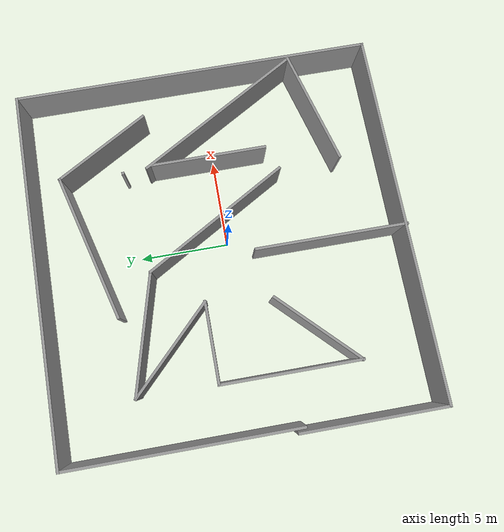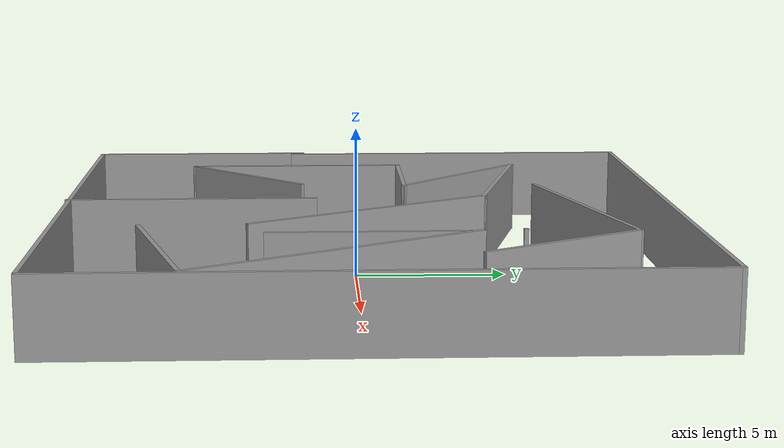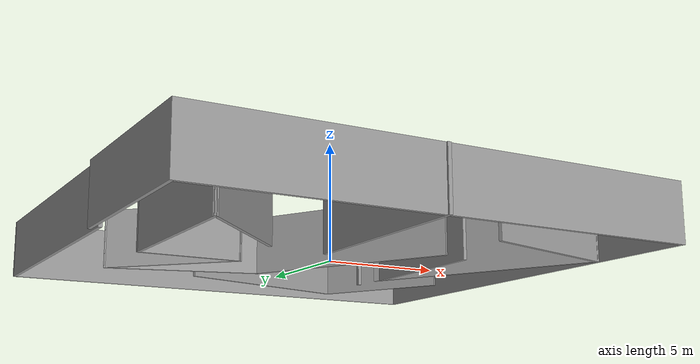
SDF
<?xml version='1.0'?>
<sdf version='1.7'>
  <model name='custom_maze'>
    <pose>-0.400527 0.370273 0 0 -0 0</pose>
    <link name='Wall_13'>
      <collision name='Wall_13_Collision'>
        <geometry>
          <box>
            <size>0.16 0.15 2.5</size>
          </box>
        </geometry>
        <pose>0 0 1.25 0 -0 0</pose>
      </collision>
      <visual name='Wall_13_Visual'>
        <pose>0 0 1.25 0 -0 0</pose>
        <geometry>
          <box>
            <size>0.16 0.15 2.5</size>
          </box>
        </geometry>
        <material>
          <script>
            <uri>file://media/materials/scripts/gazebo.material</uri>
            <name>Gazebo/Grey</name>
          </script>
          <ambient>1 1 1 1</ambient>
        </material>
        <meta>
          <layer>0</layer>
        </meta>
      </visual>
      <pose>4.87592 4.74466 0 0 -0 0</pose>
    </link>
    <link name='Wall_16'>
      <collision name='Wall_16_Collision'>
        <geometry>
          <box>
            <size>8.5 0.15 2.5</size>
          </box>
        </geometry>
        <pose>0 0 1.25 0 -0 0</pose>
      </collision>
      <visual name='Wall_16_Visual'>
        <pose>0 0 1.25 0 -0 0</pose>
        <geometry>
          <box>
            <size>8.5 0.15 2.5</size>
          </box>
        </geometry>
        <material>
          <script>
            <uri>file://media/materials/scripts/gazebo.material</uri>
            <name>Gazebo/Grey</name>
          </script>
          <ambient>1 1 1 1</ambient>
        </material>
        <meta>
          <layer>0</layer>
        </meta>
      </visual>
      <pose>1.08404 7.16042 0 0 -0 0.261799</pose>
    </link>
    <link name='Wall_17'>
      <collision name='Wall_17_Collision'>
        <geometry>
          <box>
            <size>6 0.15 2.5</size>
          </box>
        </geometry>
        <pose>0 0 1.25 0 -0 0</pose>
      </collision>
      <visual name='Wall_17_Visual'>
        <pose>0 0 1.25 0 -0 0</pose>
        <geometry>
          <box>
            <size>6 0.15 2.5</size>
          </box>
        </geometry>
        <material>
          <script>
            <uri>file://media/materials/scripts/gazebo.material</uri>
            <name>Gazebo/Grey</name>
          </script>
          <ambient>1 1 1 1</ambient>
        </material>
        <meta>
          <layer>0</layer>
        </meta>
      </visual>
      <pose>6.57928 5.70786 0 0 -0 -1.0472</pose>
    </link>
    <link name='Wall_19'>
      <collision name='Wall_19_Collision'>
        <geometry>
          <box>
            <size>10.5 0.15 2.5</size>
          </box>
        </geometry>
        <pose>0 0 1.25 0 -0 0</pose>
      </collision>
      <visual name='Wall_19_Visual'>
        <pose>0 0 1.25 0 -0 0</pose>
        <geometry>
          <box>
            <size>10.5 0.15 2.5</size>
          </box>
        </geometry>
        <material>
          <script>
            <uri>file://media/materials/scripts/gazebo.material</uri>
            <name>Gazebo/Grey</name>
          </script>
          <ambient>1 1 1 1</ambient>
        </material>
        <meta>
          <layer>0</layer>
        </meta>
      </visual>
      <pose>7.55134 -1.09448 0 0 -0 -1.0472</pose>
    </link>
    <link name='Wall_21'>
      <collision name='Wall_21_Collision'>
        <geometry>
          <box>
            <size>6.5 0.15 2.5</size>
          </box>
        </geometry>
        <pose>0 0 1.25 0 -0 0</pose>
      </collision>
      <visual name='Wall_21_Visual'>
        <pose>0 0 1.25 0 -0 0</pose>
        <geometry>
          <box>
            <size>6.5 0.15 2.5</size>
          </box>
        </geometry>
        <material>
          <script>
            <uri>file://media/materials/scripts/gazebo.material</uri>
            <name>Gazebo/Grey</name>
          </script>
          <ambient>1 1 1 1</ambient>
        </material>
        <meta>
          <layer>0</layer>
        </meta>
      </visual>
      <pose>5.06845 -0.101621 0 0 -0 -1.5708</pose>
    </link>
    <link name='Wall_23'>
      <collision name='Wall_23_Collision'>
        <geometry>
          <box>
            <size>9.25 0.15 2.5</size>
          </box>
        </geometry>
        <pose>0 0 1.25 0 -0 0</pose>
      </collision>
      <visual name='Wall_23_Visual'>
        <pose>0 0 1.25 0 -0 0</pose>
        <geometry>
          <box>
            <size>9.25 0.15 2.5</size>
          </box>
        </geometry>
        <material>
          <script>
            <uri>file://media/materials/scripts/gazebo.material</uri>
            <name>Gazebo/Grey</name>
          </script>
          <ambient>1 1 1 1</ambient>
        </material>
        <meta>
          <layer>0</layer>
        </meta>
      </visual>
      <pose>1.43354 0.109629 0 0 -0 2.0944</pose>
    </link>
    <link name='Wall_24'>
      <collision name='Wall_24_Collision'>
        <geometry>
          <box>
            <size>6.75 0.15 2.5</size>
          </box>
        </geometry>
        <pose>0 0 1.25 0 -0 0</pose>
      </collision>
      <visual name='Wall_24_Visual'>
        <pose>0 0 1.25 0 -0 0</pose>
        <geometry>
          <box>
            <size>6.75 0.15 2.5</size>
          </box>
        </geometry>
        <material>
          <script>
            <uri>file://media/materials/scripts/gazebo.material</uri>
            <name>Gazebo/Grey</name>
          </script>
          <ambient>1 1 1 1</ambient>
        </material>
        <meta>
          <layer>0</layer>
        </meta>
      </visual>
      <pose>-4.02901 4.90415 0 0 -0 2.87979</pose>
    </link>
    <link name='Wall_25'>
      <collision name='Wall_25_Collision'>
        <geometry>
          <box>
            <size>6.25 0.15 2.5</size>
          </box>
        </geometry>
        <pose>0 0 1.25 0 -0 0</pose>
      </collision>
      <visual name='Wall_25_Visual'>
        <pose>0 0 1.25 0 -0 0</pose>
        <geometry>
          <box>
            <size>6.25 0.15 2.5</size>
          </box>
        </geometry>
        <material>
          <script>
            <uri>file://media/materials/scripts/gazebo.material</uri>
            <name>Gazebo/Grey</name>
          </script>
          <ambient>1 1 1 1</ambient>
        </material>
        <meta>
          <layer>0</layer>
        </meta>
      </visual>
      <pose>-5.05989 3.60157 0 0 -0 -0.785398</pose>
    </link>
    <link name='Wall_26'>
      <collision name='Wall_26_Collision'>
        <geometry>
          <box>
            <size>4.5 0.15 2.5</size>
          </box>
        </geometry>
        <pose>0 0 1.25 0 -0 0</pose>
      </collision>
      <visual name='Wall_26_Visual'>
        <pose>0 0 1.25 0 -0 0</pose>
        <geometry>
          <box>
            <size>4.5 0.15 2.5</size>
          </box>
        </geometry>
        <material>
          <script>
            <uri>file://media/materials/scripts/gazebo.material</uri>
            <name>Gazebo/Grey</name>
          </script>
          <ambient>1 1 1 1</ambient>
        </material>
        <meta>
          <layer>0</layer>
        </meta>
      </visual>
      <pose>-5.07822 1.4449 0 0 -0 3.14159</pose>
    </link>
    <link name='Wall_27'>
      <collision name='Wall_27_Collision'>
        <geometry>
          <box>
            <size>7.75 0.15 2.5</size>
          </box>
        </geometry>
        <pose>0 0 1.25 0 -0 0</pose>
      </collision>
      <visual name='Wall_27_Visual'>
        <pose>0 0 1.25 0 -0 0</pose>
        <geometry>
          <box>
            <size>7.75 0.15 2.5</size>
          </box>
        </geometry>
        <material>
          <script>
            <uri>file://media/materials/scripts/gazebo.material</uri>
            <name>Gazebo/Grey</name>
          </script>
          <ambient>1 1 1 1</ambient>
        </material>
        <meta>
          <layer>0</layer>
        </meta>
      </visual>
      <pose>-7.25322 -2.3551 0 0 -0 -1.5708</pose>
    </link>
    <link name='Wall_28'>
      <collision name='Wall_28_Collision'>
        <geometry>
          <box>
            <size>5.75 0.15 2.5</size>
          </box>
        </geometry>
        <pose>0 0 1.25 0 -0 0</pose>
      </collision>
      <visual name='Wall_28_Visual'>
        <pose>0 0 1.25 0 -0 0</pose>
        <geometry>
          <box>
            <size>5.75 0.15 2.5</size>
          </box>
        </geometry>
        <material>
          <script>
            <uri>file://media/materials/scripts/gazebo.material</uri>
            <name>Gazebo/Grey</name>
          </script>
          <ambient>1 1 1 1</ambient>
        </material>
        <meta>
          <layer>0</layer>
        </meta>
      </visual>
      <pose>-5.27332 -4.1752 0 0 -0 0.785398</pose>
    </link>
    <link name='Wall_3'>
      <collision name='Wall_3_Collision'>
        <geometry>
          <box>
            <size>8 0.15 2.5</size>
          </box>
        </geometry>
        <pose>0 0 1.25 0 -0 0</pose>
      </collision>
      <visual name='Wall_3_Visual'>
        <pose>0 0 1.25 0 -0 0</pose>
        <geometry>
          <box>
            <size>8 0.15 2.5</size>
          </box>
        </geometry>
        <material>
          <script>
            <uri>file://media/materials/scripts/gazebo.material</uri>
            <name>Gazebo/Grey</name>
          </script>
          <ambient>1 1 1 1</ambient>
        </material>
        <meta>
          <layer>0</layer>
        </meta>
      </visual>
      <pose>-10.3 -6.08639 0 0 -0 -1.5708</pose>
    </link>
    <link name='Wall_30'>
      <collision name='Wall_30_Collision'>
        <geometry>
          <box>
            <size>8.5 0.15 2.5</size>
          </box>
        </geometry>
        <pose>0 0 1.25 0 -0 0</pose>
      </collision>
      <visual name='Wall_30_Visual'>
        <pose>0 0 1.25 0 -0 0</pose>
        <geometry>
          <box>
            <size>8.5 0.15 2.5</size>
          </box>
        </geometry>
        <material>
          <script>
            <uri>file://media/materials/scripts/gazebo.material</uri>
            <name>Gazebo/Grey</name>
          </script>
          <ambient>1 1 1 1</ambient>
        </material>
        <meta>
          <layer>0</layer>
        </meta>
      </visual>
      <pose>-0.58041 -5.91362 0 0 -0 -1.5708</pose>
    </link>
    <link name='Wall_32'>
      <collision name='Wall_32_Collision'>
        <geometry>
          <box>
            <size>6.75 0.15 2.5</size>
          </box>
        </geometry>
        <pose>0 0 1.25 0 -0 0</pose>
      </collision>
      <visual name='Wall_32_Visual'>
        <pose>0 0 1.25 0 -0 0</pose>
        <geometry>
          <box>
            <size>6.75 0.15 2.5</size>
          </box>
        </geometry>
        <material>
          <script>
            <uri>file://media/materials/scripts/gazebo.material</uri>
            <name>Gazebo/Grey</name>
          </script>
          <ambient>1 1 1 1</ambient>
        </material>
        <meta>
          <layer>0</layer>
        </meta>
      </visual>
      <pose>7.0007 -6.42877 0 0 -0 0.261799</pose>
    </link>
    <link name='Wall_4'>
      <collision name='Wall_4_Collision'>
        <geometry>
          <box>
            <size>20.75 0.15 2.5</size>
          </box>
        </geometry>
        <pose>0 0 1.25 0 -0 0</pose>
      </collision>
      <visual name='Wall_4_Visual'>
        <pose>0 0 1.25 0 -0 0</pose>
        <geometry>
          <box>
            <size>20.75 0.15 2.5</size>
          </box>
        </geometry>
        <material>
          <script>
            <uri>file://media/materials/scripts/gazebo.material</uri>
            <name>Gazebo/Grey</name>
          </script>
          <ambient>1 1 1 1</ambient>
        </material>
        <meta>
          <layer>0</layer>
        </meta>
      </visual>
      <pose>0 -10.0114 0 0 -0 0</pose>
    </link>
    <link name='Wall_5'>
      <collision name='Wall_5_Collision'>
        <geometry>
          <box>
            <size>20.25 0.15 2.5</size>
          </box>
        </geometry>
        <pose>0 0 1.25 0 -0 0</pose>
      </collision>
      <visual name='Wall_5_Visual'>
        <pose>0 0 1.25 0 -0 0</pose>
        <geometry>
          <box>
            <size>20.25 0.15 2.5</size>
          </box>
        </geometry>
        <material>
          <script>
            <uri>file://media/materials/scripts/gazebo.material</uri>
            <name>Gazebo/Grey</name>
          </script>
          <ambient>1 1 1 1</ambient>
        </material>
        <meta>
          <layer>0</layer>
        </meta>
      </visual>
      <pose>10.3 0.038614 0 0 -0 1.5708</pose>
    </link>
    <link name='Wall_6'>
      <collision name='Wall_6_Collision'>
        <geometry>
          <box>
            <size>20.5 0.15 2.5</size>
          </box>
        </geometry>
        <pose>0 0 1.25 0 -0 0</pose>
      </collision>
      <visual name='Wall_6_Visual'>
        <pose>0 0 1.25 0 -0 0</pose>
        <geometry>
          <box>
            <size>20.5 0.15 2.5</size>
          </box>
        </geometry>
        <material>
          <script>
            <uri>file://media/materials/scripts/gazebo.material</uri>
            <name>Gazebo/Grey</name>
          </script>
          <ambient>1 1 1 1</ambient>
        </material>
        <meta>
          <layer>0</layer>
        </meta>
      </visual>
      <pose>0.125 10.0886 0 0 -0 3.14159</pose>
    </link>
    <link name='Wall_7'>
      <collision name='Wall_7_Collision'>
        <geometry>
          <box>
            <size>12.75 0.15 2.5</size>
          </box>
        </geometry>
        <pose>0 0 1.25 0 -0 0</pose>
      </collision>
      <visual name='Wall_7_Visual'>
        <pose>0 0 1.25 0 -0 0</pose>
        <geometry>
          <box>
            <size>12.75 0.15 2.5</size>
          </box>
        </geometry>
        <material>
          <script>
            <uri>file://media/materials/scripts/gazebo.material</uri>
            <name>Gazebo/Grey</name>
          </script>
          <ambient>1 1 1 1</ambient>
        </material>
        <meta>
          <layer>0</layer>
        </meta>
      </visual>
      <pose>-10.05 3.78861 0 0 -0 -1.5708</pose>
    </link>
    <static>1</static>
  </model>
</sdf>
